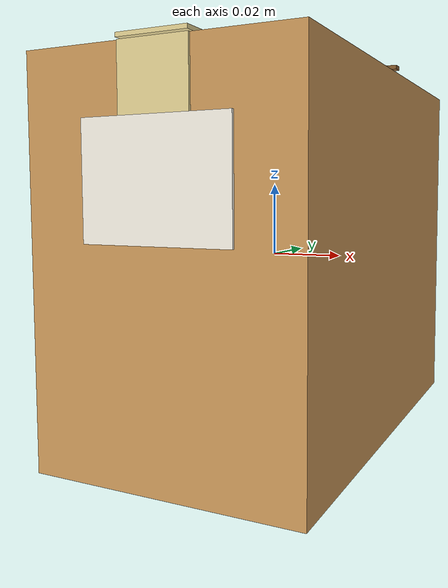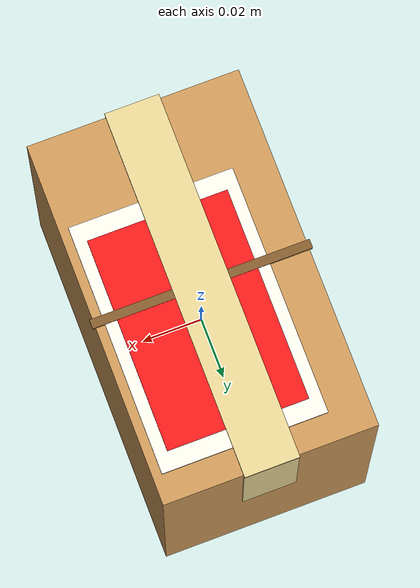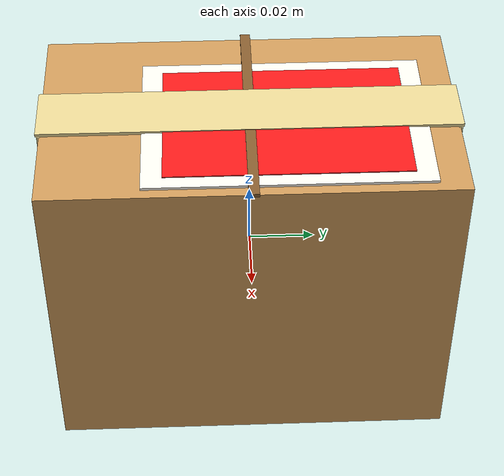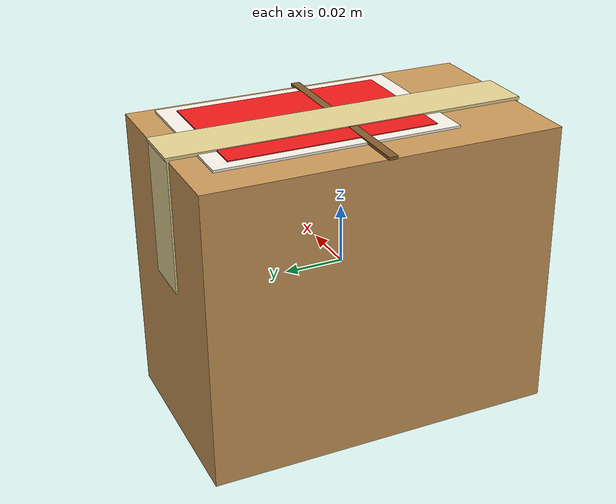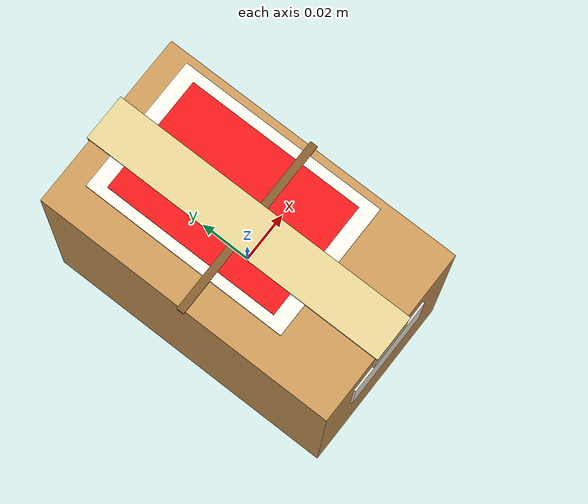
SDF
<?xml version="1.0" ?>
<sdf version="1.6">
  <model name="parcel_box">

    <link name="link">

      <!-- ฟิสิกส์: กล่องพัสดุ 0.3 kg  7×12×10 cm -->
      <inertial>
        <mass>0.3</mass>
        <inertia>
          <!-- ixx = m*(d²+h²)/12 = 0.3*(0.12²+0.10²)/12 -->
          <ixx>0.000610</ixx>
          <ixy>0</ixy><ixz>0</ixz>
          <!-- iyy = m*(w²+h²)/12 = 0.3*(0.07²+0.10²)/12 -->
          <iyy>0.000373</iyy>
          <iyz>0</iyz>
          <!-- izz = m*(w²+d²)/12 = 0.3*(0.07²+0.12²)/12 -->
          <izz>0.000483</izz>
        </inertia>
      </inertial>

      <!-- ── 1. ตัวกล่องหลัก: cardboard brown ── -->
      <visual name="box_body">
        <geometry><box><size>0.07 0.12 0.10</size></box></geometry>
        <material>
          <ambient>0.72 0.52 0.28 1</ambient>
          <diffuse>0.80 0.60 0.35 1</diffuse>
          <specular>0.04 0.04 0.02 1</specular>
        </material>
      </visual>

      <!-- ── 2. พื้น label สีขาว (กระดาษ) บนหน้าบน ── -->
      <visual name="label_paper">
        <pose>0.005 0.01 0.0503 0 0 0</pose>
        <geometry><box><size>0.054 0.082 0.001</size></box></geometry>
        <material>
          <ambient>0.96 0.94 0.90 1</ambient>
          <diffuse>0.98 0.96 0.92 1</diffuse>
          <specular>0.15 0.15 0.15 1</specular>
        </material>
      </visual>

      <!-- ── 3. label สีแดง (shipping label) บนหน้าบน ── -->
      <visual name="label_red">
        <pose>0.005 0.01 0.0506 0 0 0</pose>
        <geometry><box><size>0.046 0.070 0.001</size></box></geometry>
        <material>
          <ambient>0.82 0.06 0.06 1</ambient>
          <diffuse>0.95 0.10 0.10 1</diffuse>
          <specular>0.12 0.05 0.05 1</specular>
        </material>
      </visual>

      <!-- ── 4. เทปกาว แนว Y บนหน้าบน (front→back) ── -->
      <visual name="tape_top">
        <pose>0 0 0.0509 0 0 0</pose>
        <geometry><box><size>0.018 0.122 0.001</size></box></geometry>
        <material>
          <ambient>0.88 0.80 0.55 1</ambient>
          <diffuse>0.90 0.83 0.58 1</diffuse>
          <specular>0.50 0.45 0.25 1</specular>
        </material>
      </visual>

      <!-- ── 5. เทปกาวลงหน้า front face (y = -0.06) ── -->
      <visual name="tape_front">
        <pose>0 -0.0601 0.028 1.5708 0 0</pose>
        <geometry><box><size>0.018 0.044 0.001</size></box></geometry>
        <material>
          <ambient>0.88 0.80 0.55 1</ambient>
          <diffuse>0.90 0.83 0.58 1</diffuse>
          <specular>0.50 0.45 0.25 1</specular>
        </material>
      </visual>

      <!-- ── 6. เทปกาวลงหน้า back face (y = +0.06) ── -->
      <visual name="tape_back">
        <pose>0 0.0601 0.028 -1.5708 0 0</pose>
        <geometry><box><size>0.018 0.044 0.001</size></box></geometry>
        <material>
          <ambient>0.88 0.80 0.55 1</ambient>
          <diffuse>0.90 0.83 0.58 1</diffuse>
          <specular>0.50 0.45 0.25 1</specular>
        </material>
      </visual>

      <!-- ── 7. รอยพับฝากล่อง (center seam) แนว X ── -->
      <visual name="seam_top">
        <pose>0 0 0.0507 0 0 0</pose>
        <geometry><box><size>0.072 0.003 0.001</size></box></geometry>
        <material>
          <ambient>0.50 0.34 0.16 1</ambient>
          <diffuse>0.52 0.36 0.18 1</diffuse>
          <specular>0.0 0.0 0.0 1</specular>
        </material>
      </visual>

      <!-- ── 8. address label ที่หน้ากล่อง front face ── -->
      <visual name="address_label">
        <pose>0 -0.0602 0.020 1.5708 0 0</pose>
        <geometry><box><size>0.038 0.028 0.001</size></box></geometry>
        <material>
          <ambient>0.95 0.93 0.88 1</ambient>
          <diffuse>0.97 0.95 0.90 1</diffuse>
          <specular>0.10 0.10 0.10 1</specular>
        </material>
      </visual>

      <!-- ── Collision ── -->
      <collision name="collision">
        <geometry><box><size>0.07 0.12 0.10</size></box></geometry>
        <surface>
          <friction>
            <ode><mu>0.9</mu><mu2>0.9</mu2></ode>
          </friction>
          <contact>
            <ode>
              <kp>1000000.0</kp>
              <kd>10.0</kd>
              <min_depth>0.001</min_depth>
            </ode>
          </contact>
        </surface>
      </collision>

    </link>
  </model>
</sdf>
